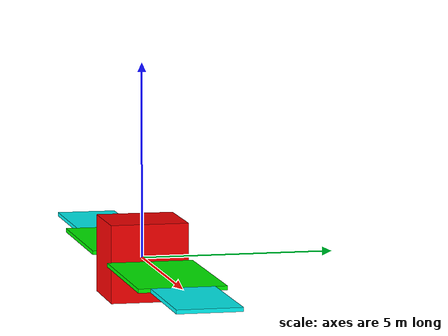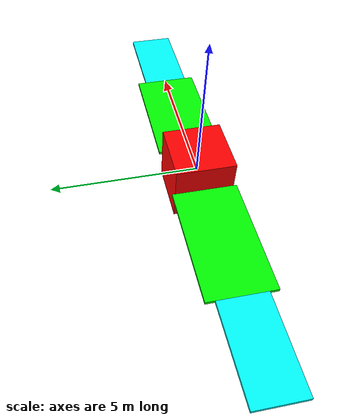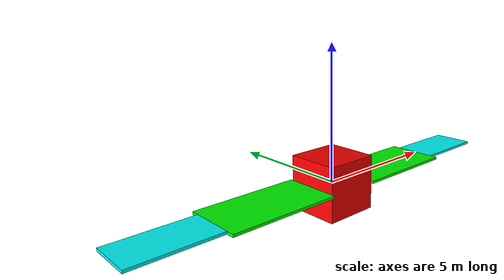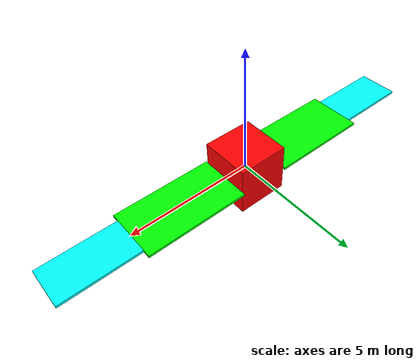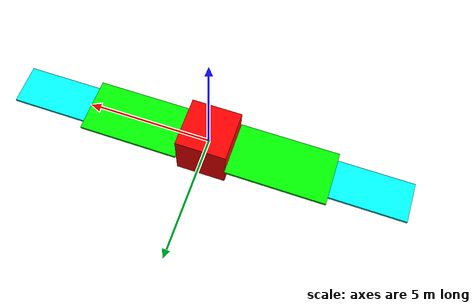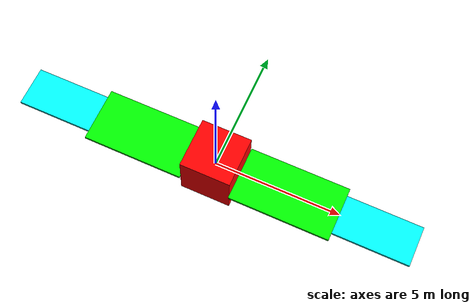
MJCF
<mujoco>
	<option gravity="0 0 0" integrator="RK4" timestep="0.1"/>

	<default class="main">
		<default class="panel">
			<geom type="box" pos="0 0 2" size="1.1 0.05 2" rgba="0 1 0 1"/>
		</default>
		<default class="subpanel">
			<geom type="box" pos="0 0 1.5" size="0.8 0.05 1.5" rgba="0 1 1 1"/>
		</default>
    </default>

	<worldbody>
		<body name="cube">
			<freejoint/>
			<geom name="hub_box" type="box" size="1 1 1" rgba="1 0 0 1"/>

			<body name="panel_1" childclass="panel" pos="1 0 0" xyaxes="0 1 0 0 0 1">
				<site name="test_site"/>
				<geom name="panel_1_box"/>
				<joint name="panel_1_elevation" axis="1 0 0"/>

				<body name="panel_1_2" childclass="subpanel" pos="0 0 4">
					<geom name="panel_1_2_box"/>
					<joint name="panel_1_2_elevation" axis="1 0 0"/>
				</body>
			</body>

			<body name="panel_2" childclass="panel" pos="-1 0 0" xyaxes="0 -1 0 0 0 1">
				<geom name="panel_2_box" density="100"/> <!-- CHANGED!! -->
				<joint name="panel_2_elevation" axis="1 0 0"/>

				<body name="panel_2_2" childclass="subpanel" pos="0 0 4">
					<geom name="panel_2_2_box"/>
					<joint name="panel_2_2_elevation" axis="1 0 0"/>
				</body>
			</body>
		</body>
	</worldbody>

	<actuator>
		<motor name="panel_1_elevation" joint="panel_1_elevation"/>
		<motor name="panel_2_elevation" joint="panel_2_elevation"/>
		<motor name="panel_1_2_elevation" joint="panel_1_2_elevation"/>
		<motor name="panel_2_2_elevation" joint="panel_2_2_elevation"/>
	</actuator>

	<equality>
		<joint name="panel_2_elevation" joint1="panel_2_elevation" polycoef="0.2 0 0 0 0" />
	</equality>
</mujoco>
